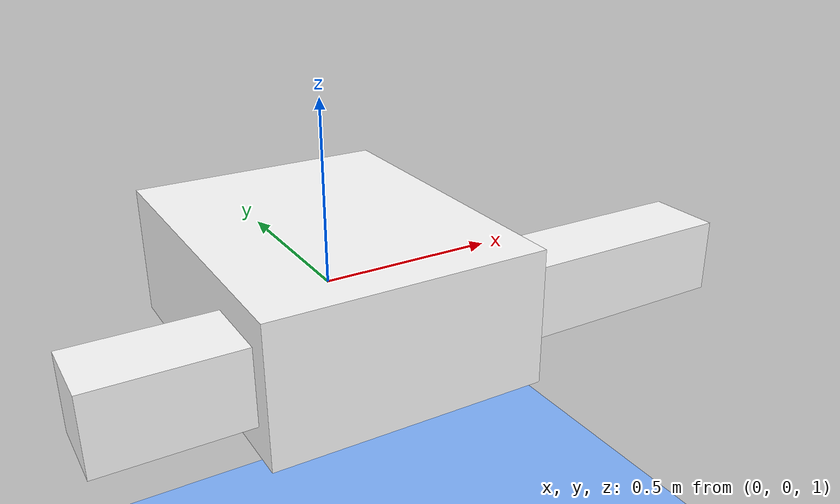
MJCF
<mujoco>
    <worldbody>
        <light diffuse=".5 .5 .5" pos="0 0 2" dir="0 -1 0" />
        <geom type="plane" size="10 10 0.1" rgba="0.5 0.7 1 1" />

        <body name="flappybird" pos="0 0 1" euler="0 0 0">
            <joint type="free" axis="0 0 0" pos="0 0 0" />
            <body name="body" pos="0 0 0" euler="0 0 0">
                <geom type="box" size="0.3635933061144947 0.4622177411500751 0.18337935924855123" rgba="1 1 1 1" mass="0.01" />
            </body>

            <body name="wing1" pos=".5 -.3 0" euler="0 -90 0">
                <joint name="joint1" type="hinge" axis="0 1 0" pos="0 0 .25" range="-45 45" />
                <geom type="box" size="0.1 0.1 0.49499710600774804" rgba="1 1 1 1" mass="0.4752115293603091" />
            </body>

            <body name="wing2" pos="-.5 -.3 0" euler="0 90 0">
                <joint name="joint2" type="hinge" axis="0 1 0" pos="0 0 .25" range="-45 45" />
                <geom type="box" size="0.1 0.1 0.22871535465552548" rgba="1 1 1 1" mass="0.6307085503050505" />
            </body>

        </body>
    </worldbody>

    <actuator>
        <motor joint="joint1" name="m1" gear="11.337793331856851" ctrllimited="true" ctrlrange="-5 5" />
        <motor joint="joint2" name="m2" gear="10.332980766627522" ctrllimited="true" ctrlrange="-5 5" />

</actuator>

</mujoco>
